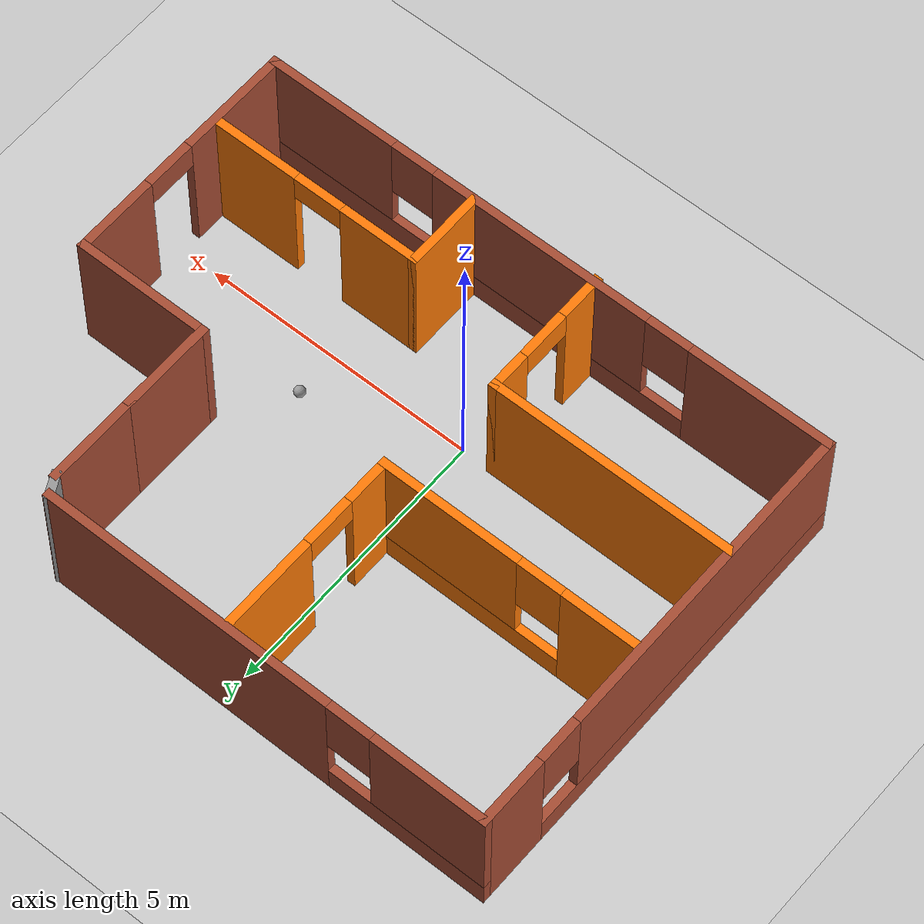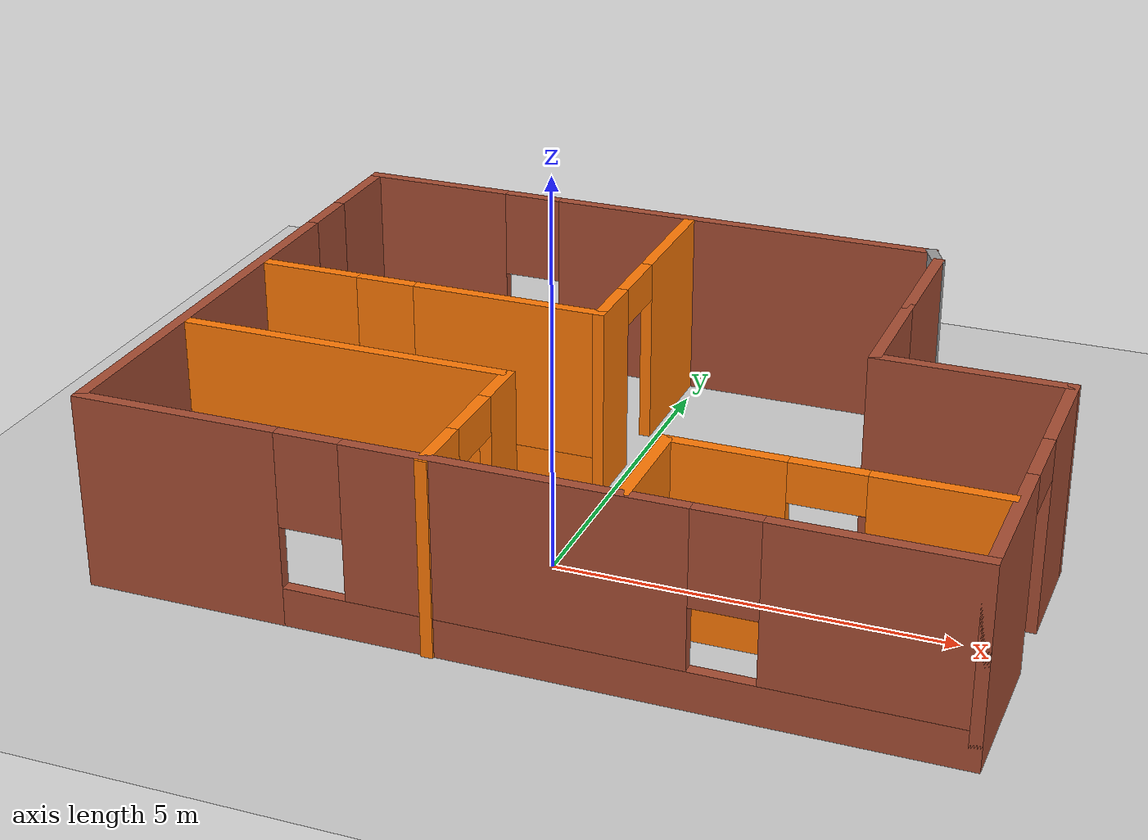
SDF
<sdf version="1.7">
 <world name="default">
  <light name="sun" type="directional">
   <pose>0 0 10 0 -0 0</pose>
   <diffuse>0.8 0.8 0.8 1</diffuse>
   <specular>0.2 0.2 0.2 1</specular>
   <attenuation>
    <range>1000</range>
    <constant>0.9</constant>
    <linear>0.01</linear>
    <quadratic>0.001</quadratic>
   </attenuation>
   <direction>-0.5 0.1 -0.9</direction>
   <spot><inner_angle>0</inner_angle><outer_angle>0</outer_angle><falloff>0</falloff></spot>
  </light>
  <model name="ground_plane">
   <static>1</static>
   <link name="link">
    <collision name="collision">
     <geometry><plane><normal>0 0 1</normal><size>100 100</size></plane></geometry>
     <surface>
      <contact><collide_bitmask>65535</collide_bitmask></contact>
      <friction><ode><mu>100</mu><mu2>50</mu2></ode></friction>
     </surface>
    </collision>
    <visual name="visual">
     <cast_shadows>0</cast_shadows>
     <geometry><plane><normal>0 0 1</normal><size>100 100</size></plane></geometry>
     <material>
      <script><uri>file://media/materials/scripts/gazebo.material</uri><name>Gazebo/Grey</name></script>
     </material>
    </visual>
   </link>
  </model>
  <gravity>0 0 -9.8</gravity>
  <magnetic_field>6e-06 2.3e-05 -4.2e-05</magnetic_field>
  <atmosphere type="adiabatic"/>
  <physics type="ode">
   <max_step_size>0.001</max_step_size>
   <real_time_factor>1</real_time_factor>
   <real_time_update_rate>1000</real_time_update_rate>
  </physics>
  <scene><ambient>0.4 0.4 0.4 1</ambient><background>0.7 0.7 0.7 1</background><shadows>1</shadows></scene>
  <spherical_coordinates>
   <surface_model>EARTH_WGS84</surface_model>
   <latitude_deg>0</latitude_deg>
   <longitude_deg>0</longitude_deg>
   <elevation>0</elevation>
   <heading_deg>0</heading_deg>
  </spherical_coordinates>
  <model name="office">
   <pose>0.384832 1.57982 0 0 -0 0</pose>
   <link name="Wall_0">
    <pose>-1.25 3.92927 0 0 -0 3.14159</pose>
    <visual name="Wall_0_Visual_0">
     <pose>-1.44712 0 1.25 0 -0 0</pose>
     <geometry><box><size>5.35575 0.15 2.5</size></box></geometry>
     <material>
      <script><uri>file://media/materials/scripts/gazebo.material</uri><name>Gazebo/Bricks</name></script>
      <ambient>1 1 1 1</ambient>
     </material>
     <meta><layer>0</layer></meta>
    </visual>
    <collision name="Wall_0_Collision_0">
     <geometry><box><size>5.35575 0.15 2.5</size></box></geometry>
     <pose>-1.44712 0 1.25 0 -0 0</pose>
    </collision>
    <visual name="Wall_0_Visual_1">
     <pose>2.67788 0 0.25 0 -0 0</pose>
     <geometry><box><size>2.89425 0.15 0.5</size></box></geometry>
     <material>
      <script><uri>file://media/materials/scripts/gazebo.material</uri><name>Gazebo/Bricks</name></script>
      <ambient>1 1 1 1</ambient>
     </material>
     <meta><layer>0</layer></meta>
    </visual>
    <collision name="Wall_0_Collision_1">
     <geometry><box><size>2.89425 0.15 0.5</size></box></geometry>
     <pose>2.67788 0 0.25 0 -0 0</pose>
    </collision>
    <visual name="Wall_0_Visual_2">
     <pose>3.07788 0 1.5 0 -0 0</pose>
     <geometry><box><size>2.09425 0.15 2</size></box></geometry>
     <material>
      <script><uri>file://media/materials/scripts/gazebo.material</uri><name>Gazebo/Bricks</name></script>
      <ambient>1 1 1 1</ambient>
     </material>
     <meta><layer>0</layer></meta>
    </visual>
    <collision name="Wall_0_Collision_2">
     <geometry><box><size>2.09425 0.15 2</size></box></geometry>
     <pose>3.07788 0 1.5 0 -0 0</pose>
    </collision>
    <visual name="Wall_0_Visual_3">
     <pose>1.63075 0 1.9 0 -0 0</pose>
     <geometry><box><size>0.8 0.15 1.2</size></box></geometry>
     <material>
      <script><uri>file://media/materials/scripts/gazebo.material</uri><name>Gazebo/Bricks</name></script>
      <ambient>1 1 1 1</ambient>
     </material>
     <meta><layer>0</layer></meta>
    </visual>
    <collision name="Wall_0_Collision_3">
     <geometry><box><size>0.8 0.15 1.2</size></box></geometry>
     <pose>1.63075 0 1.9 0 -0 0</pose>
    </collision>
   </link>
   <link name="Wall_1">
    <pose>-5.3 0.004265 0 0 0 -1.5708</pose>
    <visual name="Wall_1_Visual_0">
     <pose>-3.34943 0 1.25 0 -0 0</pose>
     <geometry><box><size>1.30114 0.15 2.5</size></box></geometry>
     <material>
      <script><uri>file://media/materials/scripts/gazebo.material</uri><name>Gazebo/Bricks</name></script>
      <ambient>1 1 1 1</ambient>
     </material>
     <meta><layer>0</layer></meta>
    </visual>
    <collision name="Wall_1_Collision_0">
     <geometry><box><size>1.30114 0.15 2.5</size></box></geometry>
     <pose>-3.34943 0 1.25 0 -0 0</pose>
    </collision>
    <visual name="Wall_1_Visual_1">
     <pose>0.650572 0 0.25 0 -0 0</pose>
     <geometry><box><size>6.69886 0.15 0.5</size></box></geometry>
     <material>
      <script><uri>file://media/materials/scripts/gazebo.material</uri><name>Gazebo/Bricks</name></script>
      <ambient>1 1 1 1</ambient>
     </material>
     <meta><layer>0</layer></meta>
    </visual>
    <collision name="Wall_1_Collision_1">
     <geometry><box><size>6.69886 0.15 0.5</size></box></geometry>
     <pose>0.650572 0 0.25 0 -0 0</pose>
    </collision>
    <visual name="Wall_1_Visual_2">
     <pose>1.05057 0 1.5 0 -0 0</pose>
     <geometry><box><size>5.89886 0.15 2</size></box></geometry>
     <material>
      <script><uri>file://media/materials/scripts/gazebo.material</uri><name>Gazebo/Bricks</name></script>
      <ambient>1 1 1 1</ambient>
     </material>
     <meta><layer>0</layer></meta>
    </visual>
    <collision name="Wall_1_Collision_2">
     <geometry><box><size>5.89886 0.15 2</size></box></geometry>
     <pose>1.05057 0 1.5 0 -0 0</pose>
    </collision>
    <visual name="Wall_1_Visual_3">
     <pose>-2.29886 0 1.9 0 -0 0</pose>
     <geometry><box><size>0.8 0.15 1.2</size></box></geometry>
     <material>
      <script><uri>file://media/materials/scripts/gazebo.material</uri><name>Gazebo/Bricks</name></script>
      <ambient>1 1 1 1</ambient>
     </material>
     <meta><layer>0</layer></meta>
    </visual>
    <collision name="Wall_1_Collision_3">
     <geometry><box><size>0.8 0.15 1.2</size></box></geometry>
     <pose>-2.29886 0 1.9 0 -0 0</pose>
    </collision>
   </link>
   <link name="Wall_10">
    <collision name="Wall_10_Collision">
     <geometry><box><size>4.5 0.15 2.5</size></box></geometry>
     <pose>0 0 1.25 0 -0 0</pose>
    </collision>
    <visual name="Wall_10_Visual">
     <pose>0 0 1.25 0 -0 0</pose>
     <geometry><box><size>4.5 0.15 2.5</size></box></geometry>
     <material>
      <script><uri>file://media/materials/scripts/gazebo.material</uri><name>Gazebo/Grey</name></script>
      <ambient>0.996078 0.47451 0.0196078 1</ambient>
     </material>
     <meta><layer>0</layer></meta>
    </visual>
    <pose>-3.125 -1.60489 0 0 -0 0</pose>
   </link>
   <link name="Wall_11">
    <pose>-0.949998 -2.77989 0 0 0 -1.5708</pose>
    <visual name="Wall_11_Visual_0">
     <pose>-0.879213 0 1.25 0 -0 0</pose>
     <geometry><box><size>0.741574 0.15 2.5</size></box></geometry>
     <material>
      <script><uri>file://media/materials/scripts/gazebo.material</uri><name>Gazebo/Grey</name></script>
      <ambient>0.996078 0.47451 0.0196078 1</ambient>
     </material>
     <meta><layer>0</layer></meta>
    </visual>
    <collision name="Wall_11_Collision_0">
     <geometry><box><size>0.741574 0.15 2.5</size></box></geometry>
     <pose>-0.879213 0 1.25 0 -0 0</pose>
    </collision>
    <visual name="Wall_11_Visual_1">
     <pose>0.820787 0 1.25 0 -0 0</pose>
     <geometry><box><size>0.858426 0.15 2.5</size></box></geometry>
     <material>
      <script><uri>file://media/materials/scripts/gazebo.material</uri><name>Gazebo/Grey</name></script>
      <ambient>0.996078 0.47451 0.0196078 1</ambient>
     </material>
     <meta><layer>0</layer></meta>
    </visual>
    <collision name="Wall_11_Collision_1">
     <geometry><box><size>0.858426 0.15 2.5</size></box></geometry>
     <pose>0.820787 0 1.25 0 -0 0</pose>
    </collision>
    <visual name="Wall_11_Visual_2">
     <pose>-0.058426 0 2.25 0 -0 0</pose>
     <geometry><box><size>0.9 0.15 0.5</size></box></geometry>
     <material>
      <script><uri>file://media/materials/scripts/gazebo.material</uri><name>Gazebo/Grey</name></script>
      <ambient>0.996078 0.47451 0.0196078 1</ambient>
     </material>
     <meta><layer>0</layer></meta>
    </visual>
    <collision name="Wall_11_Collision_2">
     <geometry><box><size>0.9 0.15 0.5</size></box></geometry>
     <pose>-0.058426 0 2.25 0 -0 0</pose>
    </collision>
   </link>
   <link name="Wall_13">
    <pose>-2.86043 0.442164 0 0 -0 0</pose>
    <visual name="Wall_13_Visual_0">
     <pose>-1.70007 0 1.25 0 -0 0</pose>
     <geometry><box><size>1.34986 0.15 2.5</size></box></geometry>
     <material>
      <script><uri>file://media/materials/scripts/gazebo.material</uri><name>Gazebo/Grey</name></script>
      <ambient>0.996078 0.47451 0.0196078 1</ambient>
     </material>
     <meta><layer>0</layer></meta>
    </visual>
    <collision name="Wall_13_Collision_0">
     <geometry><box><size>1.34986 0.15 2.5</size></box></geometry>
     <pose>-1.70007 0 1.25 0 -0 0</pose>
    </collision>
    <visual name="Wall_13_Visual_1">
     <pose>0.674931 0 0.25 0 -0 0</pose>
     <geometry><box><size>3.40014 0.15 0.5</size></box></geometry>
     <material>
      <script><uri>file://media/materials/scripts/gazebo.material</uri><name>Gazebo/Grey</name></script>
      <ambient>0.996078 0.47451 0.0196078 1</ambient>
     </material>
     <meta><layer>0</layer></meta>
    </visual>
    <collision name="Wall_13_Collision_1">
     <geometry><box><size>3.40014 0.15 0.5</size></box></geometry>
     <pose>0.674931 0 0.25 0 -0 0</pose>
    </collision>
    <visual name="Wall_13_Visual_2">
     <pose>1.07493 0 1.5 0 -0 0</pose>
     <geometry><box><size>2.60014 0.15 2</size></box></geometry>
     <material>
      <script><uri>file://media/materials/scripts/gazebo.material</uri><name>Gazebo/Grey</name></script>
      <ambient>0.996078 0.47451 0.0196078 1</ambient>
     </material>
     <meta><layer>0</layer></meta>
    </visual>
    <collision name="Wall_13_Collision_2">
     <geometry><box><size>2.60014 0.15 2</size></box></geometry>
     <pose>1.07493 0 1.5 0 -0 0</pose>
    </collision>
    <visual name="Wall_13_Visual_3">
     <pose>-0.625138 0 1.9 0 -0 0</pose>
     <geometry><box><size>0.8 0.15 1.2</size></box></geometry>
     <material>
      <script><uri>file://media/materials/scripts/gazebo.material</uri><name>Gazebo/Grey</name></script>
      <ambient>0.996078 0.47451 0.0196078 1</ambient>
     </material>
     <meta><layer>0</layer></meta>
    </visual>
    <collision name="Wall_13_Collision_3">
     <geometry><box><size>0.8 0.15 1.2</size></box></geometry>
     <pose>-0.625138 0 1.9 0 -0 0</pose>
    </collision>
   </link>
   <link name="Wall_14">
    <pose>-0.560426 2.11716 0 0 -0 1.5708</pose>
    <visual name="Wall_14_Visual_0">
     <pose>-1.30943 0 1.25 0 -0 0</pose>
     <geometry><box><size>0.881146 0.15 2.5</size></box></geometry>
     <material>
      <script><uri>file://media/materials/scripts/gazebo.material</uri><name>Gazebo/Grey</name></script>
      <ambient>0.996078 0.47451 0.0196078 1</ambient>
     </material>
     <meta><layer>0</layer></meta>
    </visual>
    <collision name="Wall_14_Collision_0">
     <geometry><box><size>0.881146 0.15 2.5</size></box></geometry>
     <pose>-1.30943 0 1.25 0 -0 0</pose>
    </collision>
    <visual name="Wall_14_Visual_1">
     <pose>0.890573 0 1.25 0 -0 0</pose>
     <geometry><box><size>1.71885 0.15 2.5</size></box></geometry>
     <material>
      <script><uri>file://media/materials/scripts/gazebo.material</uri><name>Gazebo/Grey</name></script>
      <ambient>0.996078 0.47451 0.0196078 1</ambient>
     </material>
     <meta><layer>0</layer></meta>
    </visual>
    <collision name="Wall_14_Collision_1">
     <geometry><box><size>1.71885 0.15 2.5</size></box></geometry>
     <pose>0.890573 0 1.25 0 -0 0</pose>
    </collision>
    <visual name="Wall_14_Visual_2">
     <pose>-0.418854 0 2.25 0 -0 0</pose>
     <geometry><box><size>0.9 0.15 0.5</size></box></geometry>
     <material>
      <script><uri>file://media/materials/scripts/gazebo.material</uri><name>Gazebo/Grey</name></script>
      <ambient>0.996078 0.47451 0.0196078 1</ambient>
     </material>
     <meta><layer>0</layer></meta>
    </visual>
    <collision name="Wall_14_Collision_2">
     <geometry><box><size>0.9 0.15 0.5</size></box></geometry>
     <pose>-0.418854 0 2.25 0 -0 0</pose>
    </collision>
   </link>
   <link name="Wall_16">
    <collision name="Wall_16_Collision">
     <geometry><box><size>1.5 0.15 2.5</size></box></geometry>
     <pose>0 0 1.25 0 -0 0</pose>
    </collision>
    <visual name="Wall_16_Visual">
     <pose>0 0 1.25 0 -0 0</pose>
     <geometry><box><size>1.5 0.15 2.5</size></box></geometry>
     <material>
      <script><uri>file://media/materials/scripts/gazebo.material</uri><name>Gazebo/Grey</name></script>
      <ambient>0.996078 0.47451 0.0196078 1</ambient>
     </material>
     <meta><layer>0</layer></meta>
    </visual>
    <pose>1.35292 -3.20956 0 0 -0 1.5708</pose>
   </link>
   <link name="Wall_17">
    <pose>3.27792 -2.53456 0 0 -0 0</pose>
    <visual name="Wall_17_Visual_0">
     <pose>-1.25702 0 1.25 0 -0 0</pose>
     <geometry><box><size>1.48596 0.15 2.5</size></box></geometry>
     <material>
      <script><uri>file://media/materials/scripts/gazebo.material</uri><name>Gazebo/Grey</name></script>
      <ambient>0.996078 0.47451 0.0196078 1</ambient>
     </material>
     <meta><layer>0</layer></meta>
    </visual>
    <collision name="Wall_17_Collision_0">
     <geometry><box><size>1.48596 0.15 2.5</size></box></geometry>
     <pose>-1.25702 0 1.25 0 -0 0</pose>
    </collision>
    <visual name="Wall_17_Visual_1">
     <pose>1.19298 0 1.25 0 -0 0</pose>
     <geometry><box><size>1.61404 0.15 2.5</size></box></geometry>
     <material>
      <script><uri>file://media/materials/scripts/gazebo.material</uri><name>Gazebo/Grey</name></script>
      <ambient>0.996078 0.47451 0.0196078 1</ambient>
     </material>
     <meta><layer>0</layer></meta>
    </visual>
    <collision name="Wall_17_Collision_1">
     <geometry><box><size>1.61404 0.15 2.5</size></box></geometry>
     <pose>1.19298 0 1.25 0 -0 0</pose>
    </collision>
    <visual name="Wall_17_Visual_2">
     <pose>-0.064043 0 2.25 0 -0 0</pose>
     <geometry><box><size>0.9 0.15 0.5</size></box></geometry>
     <material>
      <script><uri>file://media/materials/scripts/gazebo.material</uri><name>Gazebo/Grey</name></script>
      <ambient>0.996078 0.47451 0.0196078 1</ambient>
     </material>
     <meta><layer>0</layer></meta>
    </visual>
    <collision name="Wall_17_Collision_2">
     <geometry><box><size>0.9 0.15 0.5</size></box></geometry>
     <pose>-0.064043 0 2.25 0 -0 0</pose>
    </collision>
   </link>
   <link name="Wall_2">
    <pose>0 -3.92074 0 0 -0 0</pose>
    <visual name="Wall_2_Visual_0">
     <pose>-4.072 0 1.25 0 -0 0</pose>
     <geometry><box><size>2.60601 0.15 2.5</size></box></geometry>
     <material>
      <script><uri>file://media/materials/scripts/gazebo.material</uri><name>Gazebo/Bricks</name></script>
      <ambient>1 1 1 1</ambient>
     </material>
     <meta><layer>0</layer></meta>
    </visual>
    <collision name="Wall_2_Collision_0">
     <geometry><box><size>2.60601 0.15 2.5</size></box></geometry>
     <pose>-4.072 0 1.25 0 -0 0</pose>
    </collision>
    <visual name="Wall_2_Visual_1">
     <pose>1.303 0 0.25 0 -0 0</pose>
     <geometry><box><size>8.14399 0.15 0.5</size></box></geometry>
     <material>
      <script><uri>file://media/materials/scripts/gazebo.material</uri><name>Gazebo/Bricks</name></script>
      <ambient>1 1 1 1</ambient>
     </material>
     <meta><layer>0</layer></meta>
    </visual>
    <collision name="Wall_2_Collision_1">
     <geometry><box><size>8.14399 0.15 0.5</size></box></geometry>
     <pose>1.303 0 0.25 0 -0 0</pose>
    </collision>
    <visual name="Wall_2_Visual_2">
     <pose>0.073514 0 1.5 0 -0 0</pose>
     <geometry><box><size>4.08501 0.15 2</size></box></geometry>
     <material>
      <script><uri>file://media/materials/scripts/gazebo.material</uri><name>Gazebo/Bricks</name></script>
      <ambient>1 1 1 1</ambient>
     </material>
     <meta><layer>0</layer></meta>
    </visual>
    <collision name="Wall_2_Collision_2">
     <geometry><box><size>4.08501 0.15 2</size></box></geometry>
     <pose>0.073514 0 1.5 0 -0 0</pose>
    </collision>
    <visual name="Wall_2_Visual_3">
     <pose>4.14551 0 1.5 0 -0 0</pose>
     <geometry><box><size>2.45898 0.15 2</size></box></geometry>
     <material>
      <script><uri>file://media/materials/scripts/gazebo.material</uri><name>Gazebo/Bricks</name></script>
      <ambient>1 1 1 1</ambient>
     </material>
     <meta><layer>0</layer></meta>
    </visual>
    <collision name="Wall_2_Collision_3">
     <geometry><box><size>2.45898 0.15 2</size></box></geometry>
     <pose>4.14551 0 1.5 0 -0 0</pose>
    </collision>
    <visual name="Wall_2_Visual_4">
     <pose>-2.36899 0 1.9 0 -0 0</pose>
     <geometry><box><size>0.8 0.15 1.2</size></box></geometry>
     <material>
      <script><uri>file://media/materials/scripts/gazebo.material</uri><name>Gazebo/Bricks</name></script>
      <ambient>1 1 1 1</ambient>
     </material>
     <meta><layer>0</layer></meta>
    </visual>
    <collision name="Wall_2_Collision_4">
     <geometry><box><size>0.8 0.15 1.2</size></box></geometry>
     <pose>-2.36899 0 1.9 0 -0 0</pose>
    </collision>
    <visual name="Wall_2_Visual_5">
     <pose>2.51602 0 1.9 0 -0 0</pose>
     <geometry><box><size>0.8 0.15 1.2</size></box></geometry>
     <material>
      <script><uri>file://media/materials/scripts/gazebo.material</uri><name>Gazebo/Bricks</name></script>
      <ambient>1 1 1 1</ambient>
     </material>
     <meta><layer>0</layer></meta>
    </visual>
    <collision name="Wall_2_Collision_5">
     <geometry><box><size>0.8 0.15 1.2</size></box></geometry>
     <pose>2.51602 0 1.9 0 -0 0</pose>
    </collision>
   </link>
   <link name="Wall_3">
    <pose>5.3 -1.74574 0 0 -0 1.5708</pose>
    <visual name="Wall_3_Visual_0">
     <pose>-1.20979 0 1.25 0 -0 0</pose>
     <geometry><box><size>2.08042 0.15 2.5</size></box></geometry>
     <material>
      <script><uri>file://media/materials/scripts/gazebo.material</uri><name>Gazebo/Bricks</name></script>
      <ambient>1 1 1 1</ambient>
     </material>
     <meta><layer>0</layer></meta>
    </visual>
    <collision name="Wall_3_Collision_0">
     <geometry><box><size>2.08042 0.15 2.5</size></box></geometry>
     <pose>-1.20979 0 1.25 0 -0 0</pose>
    </collision>
    <visual name="Wall_3_Visual_1">
     <pose>1.49021 0 1.25 0 -0 0</pose>
     <geometry><box><size>1.51958 0.15 2.5</size></box></geometry>
     <material>
      <script><uri>file://media/materials/scripts/gazebo.material</uri><name>Gazebo/Bricks</name></script>
      <ambient>1 1 1 1</ambient>
     </material>
     <meta><layer>0</layer></meta>
    </visual>
    <collision name="Wall_3_Collision_1">
     <geometry><box><size>1.51958 0.15 2.5</size></box></geometry>
     <pose>1.49021 0 1.25 0 -0 0</pose>
    </collision>
    <visual name="Wall_3_Visual_2">
     <pose>0.280418 0 2.25 0 -0 0</pose>
     <geometry><box><size>0.9 0.15 0.5</size></box></geometry>
     <material>
      <script><uri>file://media/materials/scripts/gazebo.material</uri><name>Gazebo/Bricks</name></script>
      <ambient>1 1 1 1</ambient>
     </material>
     <meta><layer>0</layer></meta>
    </visual>
    <collision name="Wall_3_Collision_2">
     <geometry><box><size>0.9 0.15 0.5</size></box></geometry>
     <pose>0.280418 0 2.25 0 -0 0</pose>
    </collision>
   </link>
   <link name="Wall_4">
    <collision name="Wall_4_Collision">
     <geometry><box><size>2.5 0.15 2.5</size></box></geometry>
     <pose>0 0 1.25 0 -0 0</pose>
    </collision>
    <visual name="Wall_4_Visual">
     <pose>0 0 1.25 0 -0 0</pose>
     <geometry><box><size>2.5 0.15 2.5</size></box></geometry>
     <material>
      <script><uri>file://media/materials/scripts/gazebo.material</uri><name>Gazebo/Bricks</name></script>
      <ambient>1 1 1 1</ambient>
     </material>
     <meta><layer>0</layer></meta>
    </visual>
    <pose>4.125 0.429265 0 0 -0 3.14159</pose>
   </link>
   <link name="Wall_5">
    <collision name="Wall_5_Collision">
     <geometry><box><size>1.75 0.15 2.5</size></box></geometry>
     <pose>0 0 1.25 0 -0 0</pose>
    </collision>
    <visual name="Wall_5_Visual">
     <pose>0 0 1.25 0 -0 0</pose>
     <geometry><box><size>1.75 0.15 2.5</size></box></geometry>
     <material>
      <script><uri>file://media/materials/scripts/gazebo.material</uri><name>Gazebo/Bricks</name></script>
      <ambient>1 1 1 1</ambient>
     </material>
     <meta><layer>0</layer></meta>
    </visual>
    <pose>2.95 1.22927 0 0 -0 1.5708</pose>
   </link>
   <link name="Wall_7">
    <collision name="Wall_7_Collision">
     <geometry><box><size>1.75 0.15 2.5</size></box></geometry>
     <pose>0 0 1.25 0 -0 0</pose>
    </collision>
    <visual name="Wall_7_Visual">
     <pose>0 0 1.25 0 -0 0</pose>
     <geometry><box><size>1.75 0.15 2.5</size></box></geometry>
     <material>
      <script><uri>file://media/materials/scripts/gazebo.material</uri><name>Gazebo/Bricks</name></script>
      <ambient>1 1 1 1</ambient>
     </material>
     <meta><layer>0</layer></meta>
    </visual>
    <pose>2.95 2.82926 0 0 -0 1.5708</pose>
   </link>
   <link name="Wall_8">
    <collision name="Wall_8_Collision">
     <geometry><box><size>0.48541 0.15 2.5</size></box></geometry>
     <pose>0 0 1.25 0 -0 0</pose>
    </collision>
    <visual name="Wall_8_Visual">
     <pose>0 0 1.25 0 -0 0</pose>
     <geometry><box><size>0.48541 0.15 2.5</size></box></geometry>
     <material>
      <script><uri>file://media/materials/scripts/gazebo.material</uri><name>Gazebo/Grey</name></script>
      <ambient>1 1 1 1</ambient>
     </material>
     <meta><layer>0</layer></meta>
    </visual>
    <pose>2.875 3.77927 0 0 -0 2.03444</pose>
   </link>
   <static>1</static>
  </model>
  <model name="white">
   <link name="link_0">
    <inertial>
     <mass>1</mass>
     <inertia><ixx>0.1</ixx><ixy>0</ixy><ixz>0</ixz><iyy>0.1</iyy><iyz>0</iyz><izz>0.1</izz></inertia>
    </inertial>
    <visual name="visual">
     <geometry><sphere><radius>0.1</radius></sphere></geometry>
     <material>
      <lighting>1</lighting>
      <script><uri>file://media/materials/scripts/gazebo.material</uri><name>Gazebo/Grey</name></script>
      <shader type="pixel"><normal_map>__default__</normal_map></shader>
      <ambient>1 1 1 1</ambient>
      <diffuse>1 1 1 1</diffuse>
      <specular>1 1 1 1</specular>
      <emissive>1 1 1 1</emissive>
     </material>
    </visual>
    <collision name="collision">
     <geometry><sphere><radius>0.1</radius></sphere></geometry>
     <surface>
      <friction>
       <ode><mu>1</mu><mu2>1</mu2><fdir1>0 0 0</fdir1><slip1>0</slip1><slip2>0</slip2></ode>
       <torsional>
        <coefficient>1</coefficient>
        <patch_radius>0</patch_radius>
        <surface_radius>0</surface_radius>
        <use_patch_radius>1</use_patch_radius>
        <ode><slip>0</slip></ode>
       </torsional>
      </friction>
      <bounce><restitution_coefficient>0</restitution_coefficient><threshold>1e+06</threshold></bounce>
      <contact>
       <collide_without_contact>0</collide_without_contact>
       <collide_without_contact_bitmask>1</collide_without_contact_bitmask>
       <collide_bitmask>1</collide_bitmask>
       <ode>
        <soft_cfm>0</soft_cfm>
        <soft_erp>0.2</soft_erp>
        <kp>1e+13</kp>
        <kd>1</kd>
        <max_vel>0.01</max_vel>
        <min_depth>0</min_depth>
       </ode>
       <bullet>
        <split_impulse>1</split_impulse>
        <split_impulse_penetration_threshold>-0.01</split_impulse_penetration_threshold>
        <soft_cfm>0</soft_cfm>
        <soft_erp>0.2</soft_erp>
        <kp>1e+13</kp>
        <kd>1</kd>
       </bullet>
      </contact>
     </surface>
    </collision>
   </link>
   <static>0</static>
   <pose>2.54636 0.830261 0.1 0 -0 0</pose>
  </model>
 </world>
</sdf>
